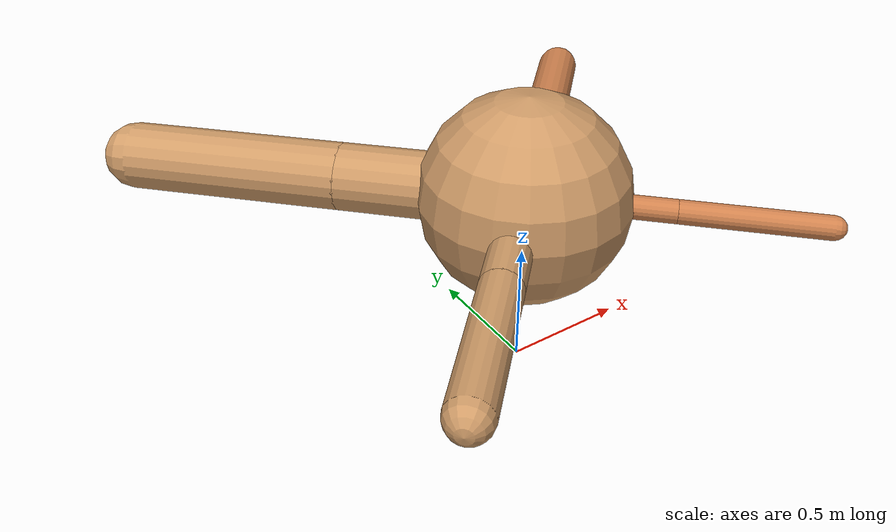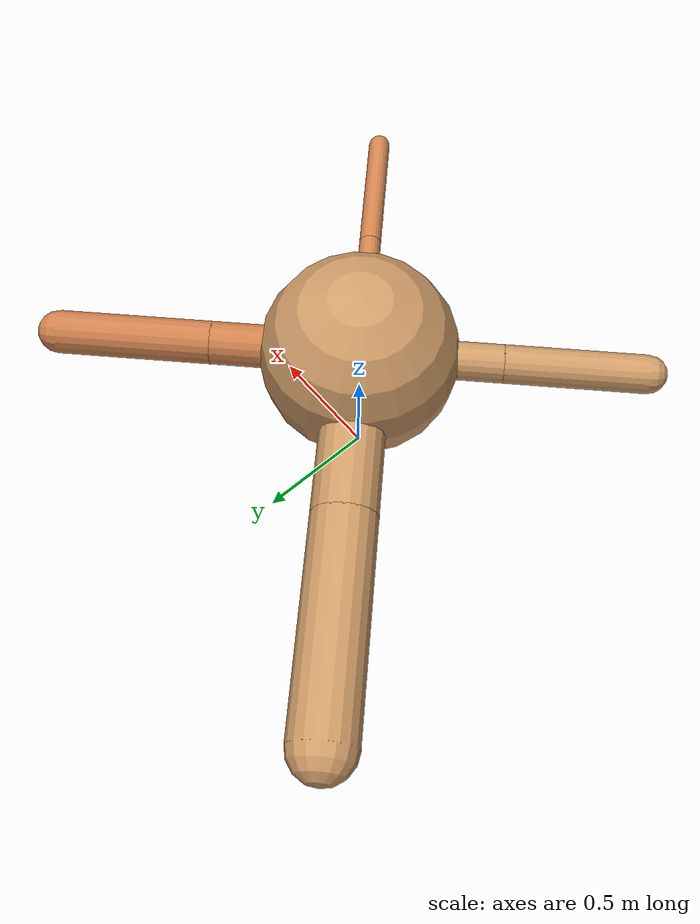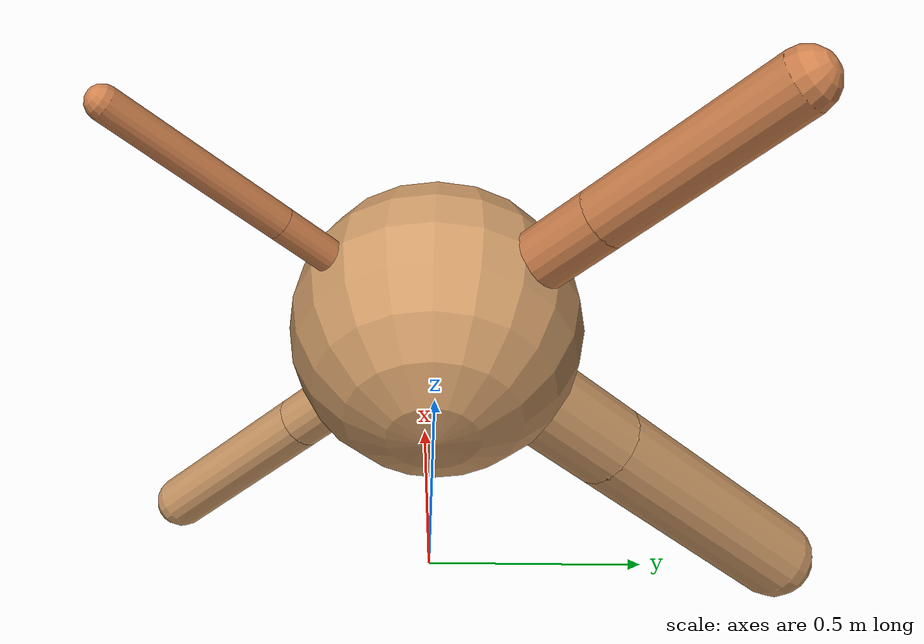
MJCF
<?xml version="1.0" ?>
<mujoco model="ant">

	<compiler angle="degree" coordinate="local" inertiafromgeom="true"/>

	<option integrator="RK4" timestep="0.01"/>

	<custom>

		<numeric data="0.0 0.0 0.55 1.0 0.0 0.0 0.0 0.0 1.0 0.0 -1.0 0.0 -1.0 0.0 1.0" name="init_qpos"/>

	</custom>

	<default>

		<joint armature="1" damping="1" limited="true"/>

		<geom conaffinity="0" condim="3" density="5.0" friction="1.5 0.1 0.1" margin="0.01" rgba="0.8 0.6 0.4 1"/>

	</default>

	<worldbody>

		<body name="torso" pos="0 0 0.75">

			<geom name="torso_geom" pos="0 0 0" size="0.39802471280554375" type="sphere"/>

			<!--joint armature="0" damping="0" limited="false" margin="0.01" name="root" pos="0 0 0" type="free"/-->

			<body name="front_left_leg" pos="0 0 0">

				<geom fromto="0 0 0 0.2 0.2 0" name="aux_1_geom" size="0.08580250328538747" type="capsule" rgba=".8 .5 .3 1"/>

				<body name="aux_1" pos="0.2 0.2 0">

					<joint axis="0 0 1" name="hip_1" pos="0.0 0.0 0.0" range="-40 40" type="hinge"/>

					<geom fromto="0 0 0 0.21654485054497902 0.21654485054497902 0" name="left_leg_geom" size="0.08580250328538747" type="capsule" rgba=".8 .5 .3 1"/>

					<body pos="0.21654485054497902 0.21654485054497902 0" name="front_left_foot">

						<joint axis="-1 1 0" name="ankle_1" pos="0.0 0.0 0.0" range="30 100" type="hinge"/>

						<geom fromto="0 0 0 0.43308970108995803 0.43308970108995803 0" name="left_ankle_geom" size="0.08580250328538747" type="capsule" rgba=".8 .5 .3 1"/>

					</body>

				</body>

			</body>

			<body name="front_right_leg" pos="0 0 0">

				<geom fromto="0 0 0 -0.2 0.2 0" name="aux_2_geom" size="0.12935562025077674" type="capsule"/>

				<body name="aux_2" pos="-0.2 0.2 0">

					<joint axis="0 0 1" name="hip_2" pos="0.0 0.0 0.0" range="-40 40" type="hinge"/>

					<geom fromto="0 0 0 -0.29303744640486523 0.29303744640486523 0" name="right_leg_geom" size="0.12935562025077674" type="capsule"/>

					<body pos="-0.29303744640486523 0.29303744640486523 0" name="front_right_foot">

						<joint axis="1 1 0" name="ankle_2" pos="0.0 0.0 0.0" range="-100 -30" type="hinge"/>

						<geom fromto="0 0 0 -0.5860748928097305 0.5860748928097305 0" name="right_ankle_geom" size="0.12935562025077674" type="capsule"/>

					</body>

				</body>

			</body>

			<body name="left_back_leg" pos="0 0 0">

				<geom fromto="0 0 0 -0.2 -0.2 0" name="aux_3_geom" size="0.07693255686706578" type="capsule"/>

				<body name="aux_3" pos="-0.2 -0.2 0">

					<joint axis="0 0 1" name="hip_3" pos="0.0 0.0 0.0" range="-40 40" type="hinge"/>

					<geom fromto="0 0 0 -0.19964617958569641 -0.19964617958569641 0" name="back_leg_geom" size="0.07693255686706578" type="capsule"/>

					<body pos="-0.19964617958569641 -0.19964617958569641 0" name="left_back_foot">

						<joint axis="-1 1 0" name="ankle_3" pos="0.0 0.0 0.0" range="-100 -30" type="hinge"/>

						<geom fromto="0 0 0 -0.39929235917139283 -0.39929235917139283 0" name="third_ankle_geom" size="0.07693255686706578" type="capsule"/>

					</body>

				</body>

			</body>

			<body name="right_back_leg" pos="0 0 0">

				<geom fromto="0 0 0 0.2 -0.2 0" name="aux_4_geom" size="0.04484341909432533" type="capsule" rgba=".8 .5 .3 1"/>

				<body name="aux_4" pos="0.2 -0.2 0">

					<joint axis="0 0 1" name="hip_4" pos="0.0 0.0 0.0" range="-40 40" type="hinge"/>

					<geom fromto="0 0 0 0.18679752942105787 -0.18679752942105787 0" name="rightback_leg_geom" size="0.04484341909432533" type="capsule" rgba=".8 .5 .3 1"/>

					<body pos="0.18679752942105787 -0.18679752942105787 0" name="right_back_foot">

						<joint axis="1 1 0" name="ankle_4" pos="0.0 0.0 0.0" range="30 100" type="hinge"/>

						<geom fromto="0 0 0 0.37359505884211575 -0.37359505884211575 0" name="fourth_ankle_geom" size="0.04484341909432533" type="capsule" rgba=".8 .5 .3 1"/>

					</body>

				</body>

			</body>

		</body>

	</worldbody>

	<actuator>

		<motor ctrllimited="true" ctrlrange="-1.0 1.0" joint="hip_4" gear="150"/>

		<motor ctrllimited="true" ctrlrange="-1.0 1.0" joint="ankle_4" gear="150"/>

		<motor ctrllimited="true" ctrlrange="-1.0 1.0" joint="hip_1" gear="150"/>

		<motor ctrllimited="true" ctrlrange="-1.0 1.0" joint="ankle_1" gear="150"/>

		<motor ctrllimited="true" ctrlrange="-1.0 1.0" joint="hip_2" gear="150"/>

		<motor ctrllimited="true" ctrlrange="-1.0 1.0" joint="ankle_2" gear="150"/>

		<motor ctrllimited="true" ctrlrange="-1.0 1.0" joint="hip_3" gear="150"/>

		<motor ctrllimited="true" ctrlrange="-1.0 1.0" joint="ankle_3" gear="150"/>

	</actuator>

</mujoco>
